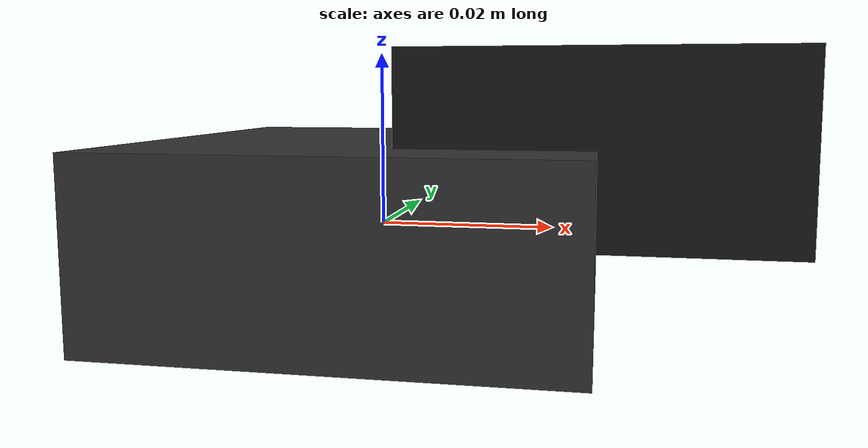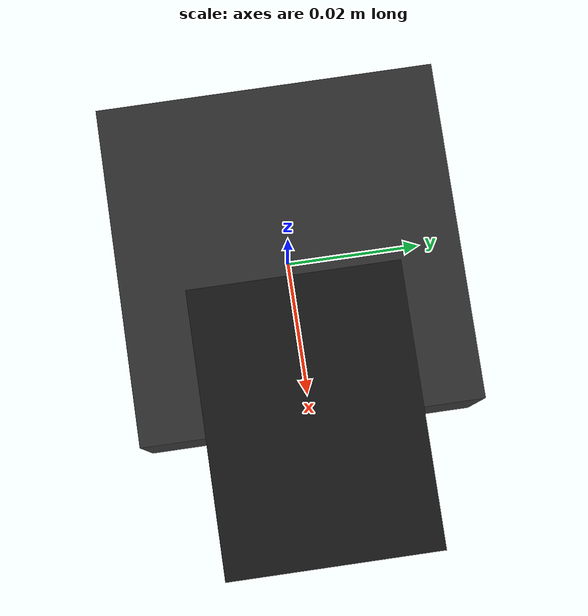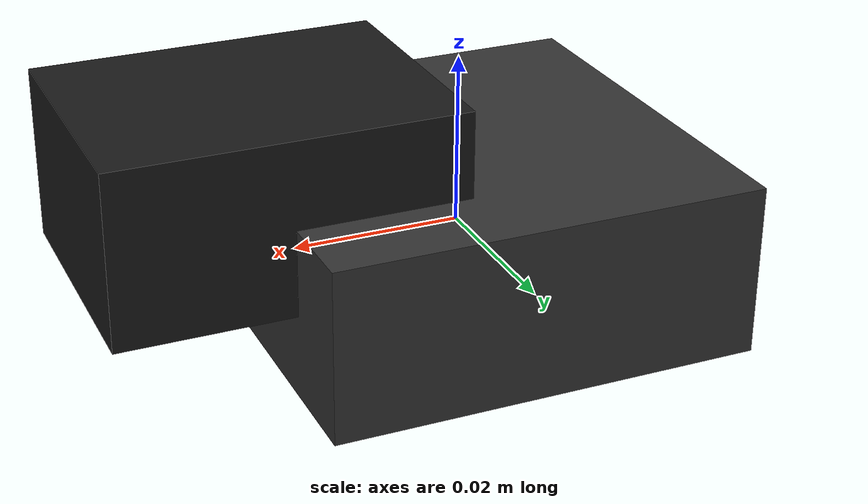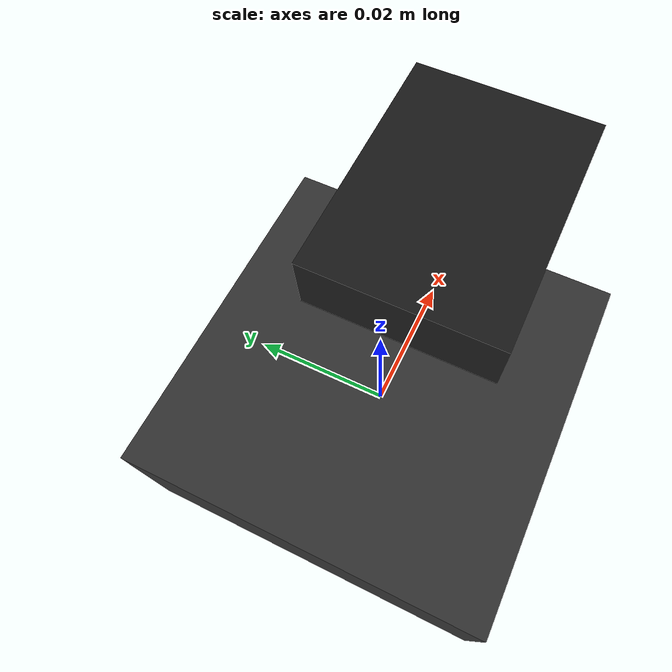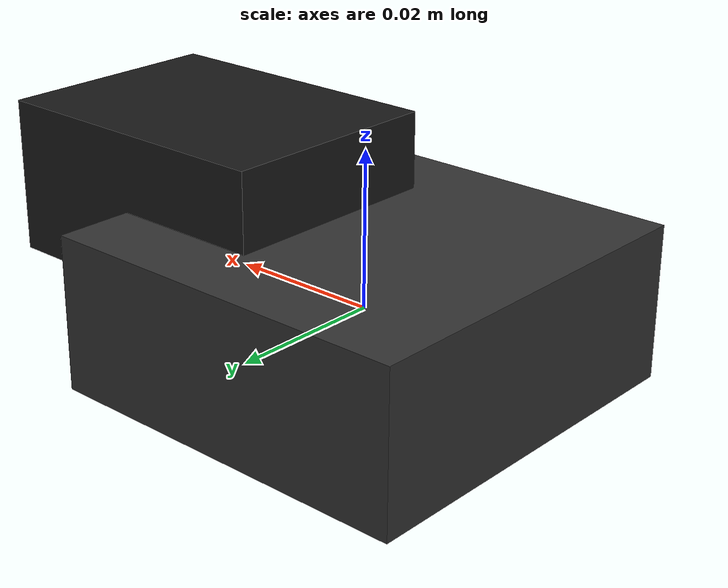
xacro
<?xml version="1.0"?>
<robot xmlns:xacro="http://www.ros.org/wiki/xacro" name="depth_camera_sensor">

  <!-- Camera properties -->
  <xacro:property name="camera_width" value="0.04" />
  <xacro:property name="camera_height" value="0.03" />
  <xacro:property name="camera_depth" value="0.02" />
  <xacro:property name="camera_mass" value="0.05" />

  <!-- PicoFlexx2 VGA specifications -->
  <xacro:property name="image_width" value="640" />
  <xacro:property name="image_height" value="480" />
  <xacro:property name="image_format" value="R8G8B8" />
  <xacro:property name="clip_near" value="0.1" />
  <xacro:property name="clip_far" value="4.0" />
  <xacro:property name="noise_mean" value="0.0" />
  <xacro:property name="noise_stddev" value="0.007" />
  <xacro:property name="hfov" value="1.047" />
  <xacro:property name="fps" value="45" />

  <!-- Inertia macro for box -->
  <xacro:macro name="box_inertia" params="m x y z">
    <inertia ixx="${m*(y*y+z*z)/12}" ixy="0" ixz="0"
             iyy="${m*(x*x+z*z)/12}" iyz="0"
             izz="${m*(x*x+y*y)/12}" />
  </xacro:macro>

  <!-- Base link for the sensor -->
  <link name="base_link">
    <inertial>
      <origin xyz="0 0 0" rpy="0 0 0"/>
      <mass value="0.1"/>
      <inertia ixx="0.0001" ixy="0" ixz="0" iyy="0.0001" iyz="0" izz="0.0001"/>
    </inertial>
    <visual>
      <origin xyz="0 0 0" rpy="0 0 0"/>
      <geometry>
        <box size="0.05 0.05 0.02"/>
      </geometry>
      <material name="base_material">
        <color rgba="0.2 0.2 0.2 1.0"/>
      </material>
    </visual>
    <collision>
      <origin xyz="0 0 0" rpy="0 0 0"/>
      <geometry>
        <box size="0.05 0.05 0.02"/>
      </geometry>
    </collision>
  </link>

  <!-- Camera Link -->
  <link name="camera_link">
    <inertial>
      <origin xyz="0 0 0" rpy="0 0 0"/>
      <mass value="${camera_mass}"/>
      <xacro:box_inertia m="${camera_mass}" x="${camera_width}" y="${camera_height}" z="${camera_depth}"/>
    </inertial>
    <visual>
      <origin xyz="0 0 0" rpy="0 0 0"/>
      <geometry>
        <box size="${camera_width} ${camera_height} ${camera_depth}"/>
      </geometry>
      <material name="camera_material">
        <color rgba="0.1 0.1 0.1 1.0"/>
      </material>
    </visual>
    <collision>
      <origin xyz="0 0 0" rpy="0 0 0"/>
      <geometry>
        <box size="${camera_width} ${camera_height} ${camera_depth}"/>
      </geometry>
    </collision>
  </link>

  <!-- Camera Optical Frame -->
  <link name="camera_depth_frame"/>
  <link name="camera_depth_optical_frame"/>

  <!-- Joints -->
  <joint name="base_to_camera" type="fixed">
    <parent link="base_link"/>
    <child link="camera_link"/>
    <origin xyz="0.025 0 0.01" rpy="0 0 0"/>
  </joint>

  <joint name="camera_to_depth_frame" type="fixed">
    <parent link="camera_link"/>
    <child link="camera_depth_frame"/>
    <origin xyz="0 0 0" rpy="0 0 0"/>
  </joint>

  <joint name="camera_depth_frame_to_optical" type="fixed">
    <parent link="camera_depth_frame"/>
    <child link="camera_depth_optical_frame"/>
    <origin xyz="0 0 0" rpy="-1.5708 0 -1.5708"/>
  </joint>

  <!-- Gazebo reference for camera_link -->
  <gazebo reference="camera_link">
    <material>Gazebo/Black</material>
    <sensor name="depth_camera" type="depth">
      <update_rate>${fps}</update_rate>
      <camera>
        <horizontal_fov>${hfov}</horizontal_fov>
        <image>
          <width>${image_width}</width>
          <height>${image_height}</height>
          <format>${image_format}</format>
        </image>
        <clip>
          <near>${clip_near}</near>
          <far>${clip_far}</far>
        </clip>
        <noise>
          <type>gaussian</type>
          <mean>${noise_mean}</mean>
          <stddev>${noise_stddev}</stddev>
        </noise>
      </camera>
      <plugin name="depth_camera_controller" filename="libgazebo_ros_camera.so">
        <ros>
          <namespace></namespace>
          <remapping>image_raw:=camera/image_raw</remapping>
          <remapping>image_depth:=camera/depth/image_raw</remapping>
          <remapping>camera_info:=camera/camera_info</remapping>
          <remapping>camera_info_depth:=camera/depth/camera_info</remapping>
          <remapping>points:=camera/points</remapping>
        </ros>
        <camera_name>depth_camera</camera_name>
        <frame_name>camera_depth_optical_frame</frame_name>
        <hack_baseline>0.07</hack_baseline>
        <min_depth>${clip_near}</min_depth>
        <max_depth>${clip_far}</max_depth>
      </plugin>
    </sensor>
  </gazebo>

</robot>
